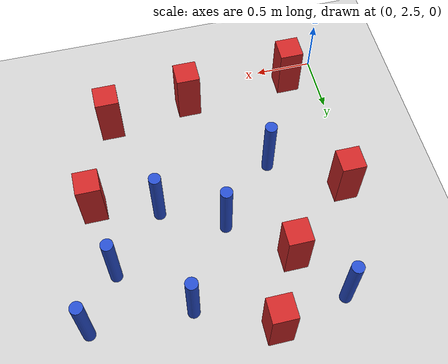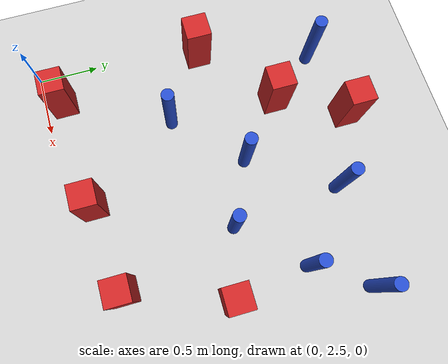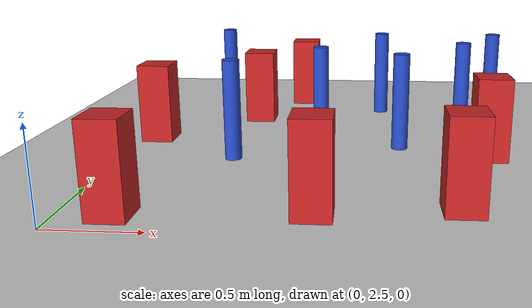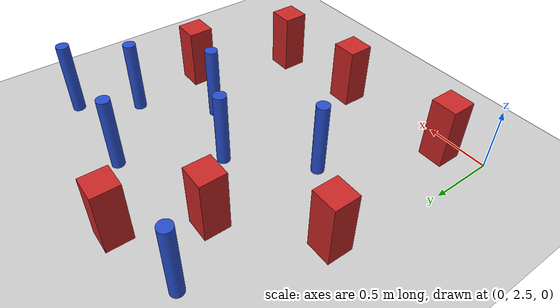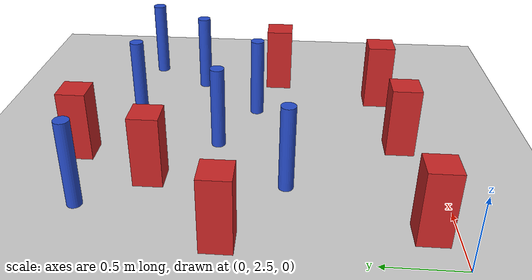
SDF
<sdf version="1.6">
 <world name="default">
  <model name="ground_plane">
   <static>1</static>
   <link name="link">
    <collision name="collision">
     <geometry><plane><normal>0 0 1</normal><size>100 100</size></plane></geometry>
     <surface><friction><ode><mu>100</mu><mu2>50</mu2></ode></friction></surface>
    </collision>
    <visual name="visual">
     <cast_shadows>0</cast_shadows>
     <geometry><plane><normal>0 0 1</normal><size>100 100</size></plane></geometry>
     <material>
      <ambient>1.0 1.0 1.0 1.0</ambient>
      <diffuse>0.8 0.8 0.8 1.0</diffuse>
      <specular>0.01 0.01 0.01 1.000000</specular>
     </material>
    </visual>
   </link>
  </model>
  <model name="pole_obstacle15">
   <static>true</static>
   <pose>0.688545159779 3.51589472263 7.38925637345e-09 -8.47170692799e-08 1.2497676509e-08 -1.74513093016e-07</pose>
   <link name="link">
    <pose>0 0 0.3 0 -0 0</pose>
    <inertial>
     <mass>1</mass>
     <inertia><ixx>0.145833</ixx><ixy>0</ixy><ixz>0</ixz><iyy>0.145833</iyy><iyz>0</iyz><izz>0.125</izz></inertia>
    </inertial>
    <collision name="collision">
     <geometry><cylinder><radius>0.05</radius><length>.6</length></cylinder></geometry>
    </collision>
    <visual name="visual">
     <geometry><cylinder><radius>0.05</radius><length>.6</length></cylinder></geometry>
     <material>
      <script><name>Gazebo/Blue</name><uri>file://media/materials/scripts/gazebo.material</uri></script>
     </material>
    </visual>
   </link>
  </model>
  <model name="square_post_obstacle43">
   <static>true</static>
   <pose>1.94496075502 2.81742902487 1.91545236811e-07 -7.35059704564e-06 1.12565212e-07 2.39332434364e-05</pose>
   <link name="link">
    <pose>0 0 0.25 0 -0 0</pose>
    <inertial>
     <mass>100</mass>
     <inertia>
      <ixx>0.166667</ixx>
      <ixy>0</ixy>
      <ixz>0</ixz>
      <iyy>0.166667</iyy>
      <iyz>0</iyz>
      <izz>0.166667</izz>
     </inertia>
    </inertial>
    <collision name="collision"><geometry><box><size>.2 .2 .5</size></box></geometry></collision>
    <visual name="visual">
     <geometry><box><size>.2 .2 .5</size></box></geometry>
     <material>
      <script><name>Gazebo/Red</name><uri>file://media/materials/scripts/gazebo.material</uri></script>
     </material>
    </visual>
   </link>
  </model>
  <model name="pole_obstacle59">
   <static>true</static>
   <pose>1.59656061625 4.67010316386 7.38925637345e-09 -8.47170692799e-08 1.24976765033e-08 -1.74513093018e-07</pose>
   <link name="link">
    <pose>0 0 0.3 0 -0 0</pose>
    <inertial>
     <mass>1</mass>
     <inertia><ixx>0.145833</ixx><ixy>0</ixy><ixz>0</ixz><iyy>0.145833</iyy><iyz>0</iyz><izz>0.125</izz></inertia>
    </inertial>
    <collision name="collision">
     <geometry><cylinder><radius>0.05</radius><length>.6</length></cylinder></geometry>
    </collision>
    <visual name="visual">
     <geometry><cylinder><radius>0.05</radius><length>.6</length></cylinder></geometry>
     <material>
      <script><name>Gazebo/Blue</name><uri>file://media/materials/scripts/gazebo.material</uri></script>
     </material>
    </visual>
   </link>
  </model>
  <model name="pole_obstacle64">
   <static>true</static>
   <pose>1.691365969 3.76829729912 7.38925637345e-09 -8.47170692799e-08 1.24976765053e-08 -1.74513093017e-07</pose>
   <link name="link">
    <pose>0 0 0.3 0 -0 0</pose>
    <inertial>
     <mass>1</mass>
     <inertia><ixx>0.145833</ixx><ixy>0</ixy><ixz>0</ixz><iyy>0.145833</iyy><iyz>0</iyz><izz>0.125</izz></inertia>
    </inertial>
    <collision name="collision">
     <geometry><cylinder><radius>0.05</radius><length>.6</length></cylinder></geometry>
    </collision>
    <visual name="visual">
     <geometry><cylinder><radius>0.05</radius><length>.6</length></cylinder></geometry>
     <material>
      <script><name>Gazebo/Blue</name><uri>file://media/materials/scripts/gazebo.material</uri></script>
     </material>
    </visual>
   </link>
  </model>
  <model name="square_post_obstacle85">
   <static>true</static>
   <pose>0.126522414941 3.89223521169 1.91545236811e-07 -7.35059704564e-06 1.12565212e-07 2.39332434364e-05</pose>
   <link name="link">
    <pose>0 0 0.25 0 -0 0</pose>
    <inertial>
     <mass>100</mass>
     <inertia>
      <ixx>0.166667</ixx>
      <ixy>0</ixy>
      <ixz>0</ixz>
      <iyy>0.166667</iyy>
      <iyz>0</iyz>
      <izz>0.166667</izz>
     </inertia>
    </inertial>
    <collision name="collision"><geometry><box><size>.2 .2 .5</size></box></geometry></collision>
    <visual name="visual">
     <geometry><box><size>.2 .2 .5</size></box></geometry>
     <material>
      <script><name>Gazebo/Red</name><uri>file://media/materials/scripts/gazebo.material</uri></script>
     </material>
    </visual>
   </link>
  </model>
  <model name="square_post_obstacle93">
   <static>true</static>
   <pose>0.28300252163 2.66964701724 1.91545236811e-07 -7.35059704564e-06 1.12565212e-07 2.39332434364e-05</pose>
   <link name="link">
    <pose>0 0 0.25 0 -0 0</pose>
    <inertial>
     <mass>100</mass>
     <inertia>
      <ixx>0.166667</ixx>
      <ixy>0</ixy>
      <ixz>0</ixz>
      <iyy>0.166667</iyy>
      <iyz>0</iyz>
      <izz>0.166667</izz>
     </inertia>
    </inertial>
    <collision name="collision"><geometry><box><size>.2 .2 .5</size></box></geometry></collision>
    <visual name="visual">
     <geometry><box><size>.2 .2 .5</size></box></geometry>
     <material>
      <script><name>Gazebo/Red</name><uri>file://media/materials/scripts/gazebo.material</uri></script>
     </material>
    </visual>
   </link>
  </model>
  <model name="pole_obstacle110">
   <static>true</static>
   <pose>2.4119110043 4.66040776027 7.38925637345e-09 -8.47170692798e-08 1.24976765033e-08 -1.74513093019e-07</pose>
   <link name="link">
    <pose>0 0 0.3 0 -0 0</pose>
    <inertial>
     <mass>1</mass>
     <inertia><ixx>0.145833</ixx><ixy>0</ixy><ixz>0</ixz><iyy>0.145833</iyy><iyz>0</iyz><izz>0.125</izz></inertia>
    </inertial>
    <collision name="collision">
     <geometry><cylinder><radius>0.05</radius><length>.6</length></cylinder></geometry>
    </collision>
    <visual name="visual">
     <geometry><cylinder><radius>0.05</radius><length>.6</length></cylinder></geometry>
     <material>
      <script><name>Gazebo/Blue</name><uri>file://media/materials/scripts/gazebo.material</uri></script>
     </material>
    </visual>
   </link>
  </model>
  <model name="pole_obstacle118">
   <static>true</static>
   <pose>0.410439473755 4.82484398117 7.38925637345e-09 -8.471706928e-08 1.24976765079e-08 -1.74513093015e-07</pose>
   <link name="link">
    <pose>0 0 0.3 0 -0 0</pose>
    <inertial>
     <mass>1</mass>
     <inertia><ixx>0.145833</ixx><ixy>0</ixy><ixz>0</ixz><iyy>0.145833</iyy><iyz>0</iyz><izz>0.125</izz></inertia>
    </inertial>
    <collision name="collision">
     <geometry><cylinder><radius>0.05</radius><length>.6</length></cylinder></geometry>
    </collision>
    <visual name="visual">
     <geometry><cylinder><radius>0.05</radius><length>.6</length></cylinder></geometry>
     <material>
      <script><name>Gazebo/Blue</name><uri>file://media/materials/scripts/gazebo.material</uri></script>
     </material>
    </visual>
   </link>
  </model>
  <model name="pole_obstacle147">
   <static>true</static>
   <pose>2.13382136571 4.23526740072 7.38925637345e-09 -8.47170692798e-08 1.24976765033e-08 -1.74513093019e-07</pose>
   <link name="link">
    <pose>0 0 0.3 0 -0 0</pose>
    <inertial>
     <mass>1</mass>
     <inertia><ixx>0.145833</ixx><ixy>0</ixy><ixz>0</ixz><iyy>0.145833</iyy><iyz>0</iyz><izz>0.125</izz></inertia>
    </inertial>
    <collision name="collision">
     <geometry><cylinder><radius>0.05</radius><length>.6</length></cylinder></geometry>
    </collision>
    <visual name="visual">
     <geometry><cylinder><radius>0.05</radius><length>.6</length></cylinder></geometry>
     <material>
      <script><name>Gazebo/Blue</name><uri>file://media/materials/scripts/gazebo.material</uri></script>
     </material>
    </visual>
   </link>
  </model>
  <model name="square_post_obstacle149">
   <static>true</static>
   <pose>1.00387183513 4.96047089195 1.91545236811e-07 -7.35059704564e-06 1.12565212e-07 2.39332434364e-05</pose>
   <link name="link">
    <pose>0 0 0.25 0 -0 0</pose>
    <inertial>
     <mass>100</mass>
     <inertia>
      <ixx>0.166667</ixx>
      <ixy>0</ixy>
      <ixz>0</ixz>
      <iyy>0.166667</iyy>
      <iyz>0</iyz>
      <izz>0.166667</izz>
     </inertia>
    </inertial>
    <collision name="collision"><geometry><box><size>.2 .2 .5</size></box></geometry></collision>
    <visual name="visual">
     <geometry><box><size>.2 .2 .5</size></box></geometry>
     <material>
      <script><name>Gazebo/Red</name><uri>file://media/materials/scripts/gazebo.material</uri></script>
     </material>
    </visual>
   </link>
  </model>
  <model name="square_post_obstacle152">
   <static>true</static>
   <pose>2.21623363284 3.61220384763 1.91545236811e-07 -7.35059704564e-06 1.12565212e-07 2.39332434364e-05</pose>
   <link name="link">
    <pose>0 0 0.25 0 -0 0</pose>
    <inertial>
     <mass>100</mass>
     <inertia>
      <ixx>0.166667</ixx>
      <ixy>0</ixy>
      <ixz>0</ixz>
      <iyy>0.166667</iyy>
      <iyz>0</iyz>
      <izz>0.166667</izz>
     </inertia>
    </inertial>
    <collision name="collision"><geometry><box><size>.2 .2 .5</size></box></geometry></collision>
    <visual name="visual">
     <geometry><box><size>.2 .2 .5</size></box></geometry>
     <material>
      <script><name>Gazebo/Red</name><uri>file://media/materials/scripts/gazebo.material</uri></script>
     </material>
    </visual>
   </link>
  </model>
  <model name="square_post_obstacle156">
   <static>true</static>
   <pose>0.721197845902 4.41073998046 1.91545236811e-07 -7.35059704564e-06 1.12565212e-07 2.39332434364e-05</pose>
   <link name="link">
    <pose>0 0 0.25 0 -0 0</pose>
    <inertial>
     <mass>100</mass>
     <inertia>
      <ixx>0.166667</ixx>
      <ixy>0</ixy>
      <ixz>0</ixz>
      <iyy>0.166667</iyy>
      <iyz>0</iyz>
      <izz>0.166667</izz>
     </inertia>
    </inertial>
    <collision name="collision"><geometry><box><size>.2 .2 .5</size></box></geometry></collision>
    <visual name="visual">
     <geometry><box><size>.2 .2 .5</size></box></geometry>
     <material>
      <script><name>Gazebo/Red</name><uri>file://media/materials/scripts/gazebo.material</uri></script>
     </material>
    </visual>
   </link>
  </model>
  <model name="square_post_obstacle188">
   <static>true</static>
   <pose>1.22717703073 2.72871970098 1.91545236811e-07 -7.35059704564e-06 1.12565212e-07 2.39332434364e-05</pose>
   <link name="link">
    <pose>0 0 0.25 0 -0 0</pose>
    <inertial>
     <mass>100</mass>
     <inertia>
      <ixx>0.166667</ixx>
      <ixy>0</ixy>
      <ixz>0</ixz>
      <iyy>0.166667</iyy>
      <iyz>0</iyz>
      <izz>0.166667</izz>
     </inertia>
    </inertial>
    <collision name="collision"><geometry><box><size>.2 .2 .5</size></box></geometry></collision>
    <visual name="visual">
     <geometry><box><size>.2 .2 .5</size></box></geometry>
     <material>
      <script><name>Gazebo/Red</name><uri>file://media/materials/scripts/gazebo.material</uri></script>
     </material>
    </visual>
   </link>
  </model>
  <model name="pole_obstacle212">
   <static>true</static>
   <pose>1.18116233104 4.01334866722 7.38925637345e-09 -8.47170692799e-08 1.24976765024e-08 -1.7451309302e-07</pose>
   <link name="link">
    <pose>0 0 0.3 0 -0 0</pose>
    <inertial>
     <mass>1</mass>
     <inertia><ixx>0.145833</ixx><ixy>0</ixy><ixz>0</ixz><iyy>0.145833</iyy><iyz>0</iyz><izz>0.125</izz></inertia>
    </inertial>
    <collision name="collision">
     <geometry><cylinder><radius>0.05</radius><length>.6</length></cylinder></geometry>
    </collision>
    <visual name="visual">
     <geometry><cylinder><radius>0.05</radius><length>.6</length></cylinder></geometry>
     <material>
      <script><name>Gazebo/Blue</name><uri>file://media/materials/scripts/gazebo.material</uri></script>
     </material>
    </visual>
   </link>
  </model>
 </world>
</sdf>
